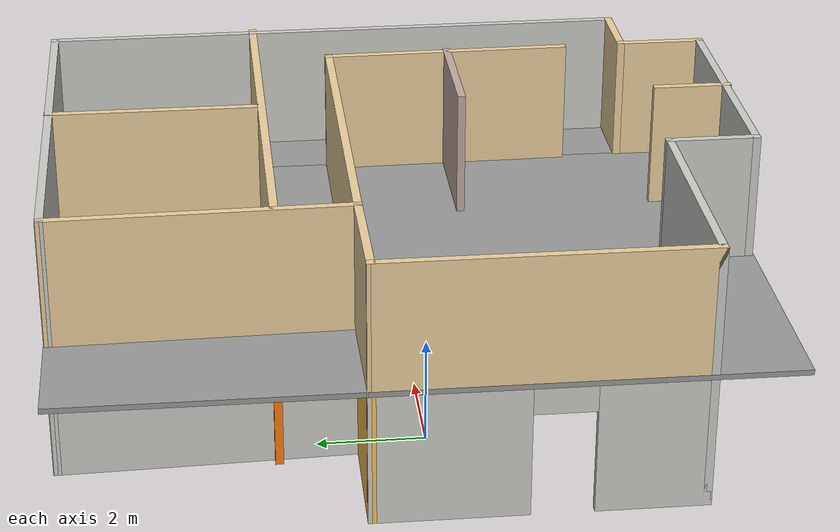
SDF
<?xml version='1.0'?>
<sdf version='1.6'>
  <model name='JdBuilding'>
    <pose frame=''>2.645 0.2 0 0 -0 0</pose>
    <link name='Floor_0'>
      <pose frame=''>0.019657 0 2.5 0 -0 0</pose>
      <visual name='Floor_0_Visual_0'>
        <pose frame=''>-0.747413 0 0.05 0 -0 0</pose>
        <geometry>
          <box>
            <size>9.2455 13.07 0.1</size>
          </box>
        </geometry>
        <material>
          <script>
            <uri>file://media/materials/scripts/gazebo.material</uri>
            <name>Gazebo/Grey</name>
          </script>
          <ambient>1 1 1 1</ambient>
        </material>
        <meta>
          <layer>1</layer>
        </meta>
      </visual>
      <collision name='Floor_0_Collision_0'>
        <geometry>
          <box>
            <size>9.2455 13.07 0.1</size>
          </box>
        </geometry>
        <pose frame=''>-0.747413 0 0.05 0 -0 0</pose>
      </collision>
      <visual name='Floor_0_Visual_1'>
        <pose frame=''>4.62275 -4.9075 0.05 0 -0 0</pose>
        <geometry>
          <box>
            <size>1.49483 3.255 0.1</size>
          </box>
        </geometry>
        <material>
          <script>
            <uri>file://media/materials/scripts/gazebo.material</uri>
            <name>Gazebo/Grey</name>
          </script>
          <ambient>1 1 1 1</ambient>
        </material>
        <meta>
          <layer>1</layer>
        </meta>
      </visual>
      <collision name='Floor_0_Collision_1'>
        <geometry>
          <box>
            <size>1.49483 3.255 0.1</size>
          </box>
        </geometry>
        <pose frame=''>4.62275 -4.9075 0.05 0 -0 0</pose>
      </collision>
      <visual name='Floor_0_Visual_2'>
        <pose frame=''>5.29775 1.6275 0.05 0 -0 0</pose>
        <geometry>
          <box>
            <size>0.144827 9.815 0.1</size>
          </box>
        </geometry>
        <material>
          <script>
            <uri>file://media/materials/scripts/gazebo.material</uri>
            <name>Gazebo/Grey</name>
          </script>
          <ambient>1 1 1 1</ambient>
        </material>
        <meta>
          <layer>1</layer>
        </meta>
      </visual>
      <collision name='Floor_0_Collision_2'>
        <geometry>
          <box>
            <size>0.144827 9.815 0.1</size>
          </box>
        </geometry>
        <pose frame=''>5.29775 1.6275 0.05 0 -0 0</pose>
      </collision>
      <visual name='Floor_0_Visual_3'>
        <pose frame=''>4.55034 3.7625 0.05 0 -0 0</pose>
        <geometry>
          <box>
            <size>1.35 5.545 0.1</size>
          </box>
        </geometry>
        <material>
          <script>
            <uri>file://media/materials/scripts/gazebo.material</uri>
            <name>Gazebo/Grey</name>
          </script>
          <ambient>1 1 1 1</ambient>
        </material>
        <meta>
          <layer>1</layer>
        </meta>
      </visual>
      <collision name='Floor_0_Collision_3'>
        <geometry>
          <box>
            <size>1.35 5.545 0.1</size>
          </box>
        </geometry>
        <pose frame=''>4.55034 3.7625 0.05 0 -0 0</pose>
      </collision>
    </link>
    <link name='Stairs_0'>
      <visual name='Stairs_0_Visual_0'>
        <pose frame=''>4.56999 0.847667 0.083333 0 -0 0</pose>
        <geometry>
          <box>
            <size>1.35 0.284667 0.166667</size>
          </box>
        </geometry>
        <material>
          <script>
            <uri>file://media/materials/scripts/gazebo.material</uri>
            <name>Gazebo/Wood</name>
          </script>
          <ambient>1 1 1 1</ambient>
        </material>
        <meta>
          <layer>0</layer>
        </meta>
      </visual>
      <collision name='Stairs_0_Collision_0'>
        <geometry>
          <box>
            <size>1.35 0.284667 0.166667</size>
          </box>
        </geometry>
        <pose frame=''>4.56999 0.847667 0.083333 0 -0 0</pose>
      </collision>
      <visual name='Stairs_0_Visual_1'>
        <pose frame=''>4.56999 0.563 0.25 0 -0 0</pose>
        <geometry>
          <box>
            <size>1.35 0.284667 0.166667</size>
          </box>
        </geometry>
        <material>
          <script>
            <uri>file://media/materials/scripts/gazebo.material</uri>
            <name>Gazebo/Wood</name>
          </script>
          <ambient>1 1 1 1</ambient>
        </material>
        <meta>
          <layer>0</layer>
        </meta>
      </visual>
      <collision name='Stairs_0_Collision_1'>
        <geometry>
          <box>
            <size>1.35 0.284667 0.166667</size>
          </box>
        </geometry>
        <pose frame=''>4.56999 0.563 0.25 0 -0 0</pose>
      </collision>
      <visual name='Stairs_0_Visual_2'>
        <pose frame=''>4.56999 0.278333 0.416667 0 -0 0</pose>
        <geometry>
          <box>
            <size>1.35 0.284667 0.166667</size>
          </box>
        </geometry>
        <material>
          <script>
            <uri>file://media/materials/scripts/gazebo.material</uri>
            <name>Gazebo/Wood</name>
          </script>
          <ambient>1 1 1 1</ambient>
        </material>
        <meta>
          <layer>0</layer>
        </meta>
      </visual>
      <collision name='Stairs_0_Collision_2'>
        <geometry>
          <box>
            <size>1.35 0.284667 0.166667</size>
          </box>
        </geometry>
        <pose frame=''>4.56999 0.278333 0.416667 0 -0 0</pose>
      </collision>
      <visual name='Stairs_0_Visual_3'>
        <pose frame=''>4.56999 -0.006334 0.583333 0 -0 0</pose>
        <geometry>
          <box>
            <size>1.35 0.284667 0.166667</size>
          </box>
        </geometry>
        <material>
          <script>
            <uri>file://media/materials/scripts/gazebo.material</uri>
            <name>Gazebo/Wood</name>
          </script>
          <ambient>1 1 1 1</ambient>
        </material>
        <meta>
          <layer>0</layer>
        </meta>
      </visual>
      <collision name='Stairs_0_Collision_3'>
        <geometry>
          <box>
            <size>1.35 0.284667 0.166667</size>
          </box>
        </geometry>
        <pose frame=''>4.56999 -0.006334 0.583333 0 -0 0</pose>
      </collision>
      <visual name='Stairs_0_Visual_4'>
        <pose frame=''>4.56999 -0.291 0.75 0 -0 0</pose>
        <geometry>
          <box>
            <size>1.35 0.284667 0.166667</size>
          </box>
        </geometry>
        <material>
          <script>
            <uri>file://media/materials/scripts/gazebo.material</uri>
            <name>Gazebo/Wood</name>
          </script>
          <ambient>1 1 1 1</ambient>
        </material>
        <meta>
          <layer>0</layer>
        </meta>
      </visual>
      <collision name='Stairs_0_Collision_4'>
        <geometry>
          <box>
            <size>1.35 0.284667 0.166667</size>
          </box>
        </geometry>
        <pose frame=''>4.56999 -0.291 0.75 0 -0 0</pose>
      </collision>
      <visual name='Stairs_0_Visual_5'>
        <pose frame=''>4.56999 -0.575667 0.916667 0 -0 0</pose>
        <geometry>
          <box>
            <size>1.35 0.284667 0.166667</size>
          </box>
        </geometry>
        <material>
          <script>
            <uri>file://media/materials/scripts/gazebo.material</uri>
            <name>Gazebo/Wood</name>
          </script>
          <ambient>1 1 1 1</ambient>
        </material>
        <meta>
          <layer>0</layer>
        </meta>
      </visual>
      <collision name='Stairs_0_Collision_5'>
        <geometry>
          <box>
            <size>1.35 0.284667 0.166667</size>
          </box>
        </geometry>
        <pose frame=''>4.56999 -0.575667 0.916667 0 -0 0</pose>
      </collision>
      <visual name='Stairs_0_Visual_6'>
        <pose frame=''>4.56999 -0.860334 1.08333 0 -0 0</pose>
        <geometry>
          <box>
            <size>1.35 0.284667 0.166667</size>
          </box>
        </geometry>
        <material>
          <script>
            <uri>file://media/materials/scripts/gazebo.material</uri>
            <name>Gazebo/Wood</name>
          </script>
          <ambient>1 1 1 1</ambient>
        </material>
        <meta>
          <layer>0</layer>
        </meta>
      </visual>
      <collision name='Stairs_0_Collision_6'>
        <geometry>
          <box>
            <size>1.35 0.284667 0.166667</size>
          </box>
        </geometry>
        <pose frame=''>4.56999 -0.860334 1.08333 0 -0 0</pose>
      </collision>
      <visual name='Stairs_0_Visual_7'>
        <pose frame=''>4.56999 -1.145 1.25 0 -0 0</pose>
        <geometry>
          <box>
            <size>1.35 0.284667 0.166667</size>
          </box>
        </geometry>
        <material>
          <script>
            <uri>file://media/materials/scripts/gazebo.material</uri>
            <name>Gazebo/Wood</name>
          </script>
          <ambient>1 1 1 1</ambient>
        </material>
        <meta>
          <layer>0</layer>
        </meta>
      </visual>
      <collision name='Stairs_0_Collision_7'>
        <geometry>
          <box>
            <size>1.35 0.284667 0.166667</size>
          </box>
        </geometry>
        <pose frame=''>4.56999 -1.145 1.25 0 -0 0</pose>
      </collision>
      <visual name='Stairs_0_Visual_8'>
        <pose frame=''>4.56999 -1.42967 1.41667 0 -0 0</pose>
        <geometry>
          <box>
            <size>1.35 0.284667 0.166667</size>
          </box>
        </geometry>
        <material>
          <script>
            <uri>file://media/materials/scripts/gazebo.material</uri>
            <name>Gazebo/Wood</name>
          </script>
          <ambient>1 1 1 1</ambient>
        </material>
        <meta>
          <layer>0</layer>
        </meta>
      </visual>
      <collision name='Stairs_0_Collision_8'>
        <geometry>
          <box>
            <size>1.35 0.284667 0.166667</size>
          </box>
        </geometry>
        <pose frame=''>4.56999 -1.42967 1.41667 0 -0 0</pose>
      </collision>
      <visual name='Stairs_0_Visual_9'>
        <pose frame=''>4.56999 -1.71433 1.58333 0 -0 0</pose>
        <geometry>
          <box>
            <size>1.35 0.284667 0.166667</size>
          </box>
        </geometry>
        <material>
          <script>
            <uri>file://media/materials/scripts/gazebo.material</uri>
            <name>Gazebo/Wood</name>
          </script>
          <ambient>1 1 1 1</ambient>
        </material>
        <meta>
          <layer>0</layer>
        </meta>
      </visual>
      <collision name='Stairs_0_Collision_9'>
        <geometry>
          <box>
            <size>1.35 0.284667 0.166667</size>
          </box>
        </geometry>
        <pose frame=''>4.56999 -1.71433 1.58333 0 -0 0</pose>
      </collision>
      <visual name='Stairs_0_Visual_10'>
        <pose frame=''>4.56999 -1.999 1.75 0 -0 0</pose>
        <geometry>
          <box>
            <size>1.35 0.284667 0.166667</size>
          </box>
        </geometry>
        <material>
          <script>
            <uri>file://media/materials/scripts/gazebo.material</uri>
            <name>Gazebo/Wood</name>
          </script>
          <ambient>1 1 1 1</ambient>
        </material>
        <meta>
          <layer>0</layer>
        </meta>
      </visual>
      <collision name='Stairs_0_Collision_10'>
        <geometry>
          <box>
            <size>1.35 0.284667 0.166667</size>
          </box>
        </geometry>
        <pose frame=''>4.56999 -1.999 1.75 0 -0 0</pose>
      </collision>
      <visual name='Stairs_0_Visual_11'>
        <pose frame=''>4.56999 -2.28367 1.91667 0 -0 0</pose>
        <geometry>
          <box>
            <size>1.35 0.284667 0.166667</size>
          </box>
        </geometry>
        <material>
          <script>
            <uri>file://media/materials/scripts/gazebo.material</uri>
            <name>Gazebo/Wood</name>
          </script>
          <ambient>1 1 1 1</ambient>
        </material>
        <meta>
          <layer>0</layer>
        </meta>
      </visual>
      <collision name='Stairs_0_Collision_11'>
        <geometry>
          <box>
            <size>1.35 0.284667 0.166667</size>
          </box>
        </geometry>
        <pose frame=''>4.56999 -2.28367 1.91667 0 -0 0</pose>
      </collision>
      <visual name='Stairs_0_Visual_12'>
        <pose frame=''>4.56999 -2.56833 2.08333 0 -0 0</pose>
        <geometry>
          <box>
            <size>1.35 0.284667 0.166667</size>
          </box>
        </geometry>
        <material>
          <script>
            <uri>file://media/materials/scripts/gazebo.material</uri>
            <name>Gazebo/Wood</name>
          </script>
          <ambient>1 1 1 1</ambient>
        </material>
        <meta>
          <layer>0</layer>
        </meta>
      </visual>
      <collision name='Stairs_0_Collision_12'>
        <geometry>
          <box>
            <size>1.35 0.284667 0.166667</size>
          </box>
        </geometry>
        <pose frame=''>4.56999 -2.56833 2.08333 0 -0 0</pose>
      </collision>
      <visual name='Stairs_0_Visual_13'>
        <pose frame=''>4.56999 -2.853 2.25 0 -0 0</pose>
        <geometry>
          <box>
            <size>1.35 0.284667 0.166667</size>
          </box>
        </geometry>
        <material>
          <script>
            <uri>file://media/materials/scripts/gazebo.material</uri>
            <name>Gazebo/Wood</name>
          </script>
          <ambient>1 1 1 1</ambient>
        </material>
        <meta>
          <layer>0</layer>
        </meta>
      </visual>
      <collision name='Stairs_0_Collision_13'>
        <geometry>
          <box>
            <size>1.35 0.284667 0.166667</size>
          </box>
        </geometry>
        <pose frame=''>4.56999 -2.853 2.25 0 -0 0</pose>
      </collision>
      <visual name='Stairs_0_Visual_14'>
        <pose frame=''>4.56999 -3.13767 2.41667 0 -0 0</pose>
        <geometry>
          <box>
            <size>1.35 0.284667 0.166667</size>
          </box>
        </geometry>
        <material>
          <script>
            <uri>file://media/materials/scripts/gazebo.material</uri>
            <name>Gazebo/Wood</name>
          </script>
          <ambient>1 1 1 1</ambient>
        </material>
        <meta>
          <layer>0</layer>
        </meta>
      </visual>
      <collision name='Stairs_0_Collision_14'>
        <geometry>
          <box>
            <size>1.35 0.284667 0.166667</size>
          </box>
        </geometry>
        <pose frame=''>4.56999 -3.13767 2.41667 0 -0 0</pose>
      </collision>
    </link>
    <link name='Wall_0'>
      <collision name='Wall_0_Collision'>
        <geometry>
          <box>
            <size>11.4304 0.15 2.5</size>
          </box>
        </geometry>
        <pose frame=''>0 0 1.25 0 -0 0</pose>
      </collision>
      <visual name='Wall_0_Visual'>
        <pose frame=''>0 0 1.25 0 -0 0</pose>
        <geometry>
          <box>
            <size>11.4304 0.15 2.5</size>
          </box>
        </geometry>
        <material>
          <script>
            <uri>file://media/materials/scripts/gazebo.material</uri>
            <name>Gazebo/CeilingTiled</name>
          </script>
          <ambient>1 0.764706 0.305882 1</ambient>
        </material>
        <meta>
          <layer>0</layer>
        </meta>
      </visual>
      <pose frame=''>5.22499 0.81 0 0 0 -1.56193</pose>
    </link>
    <link name='Wall_1'>
      <collision name='Wall_1_Collision'>
        <geometry>
          <box>
            <size>1.5 0.15 2.5</size>
          </box>
        </geometry>
        <pose frame=''>0 0 1.25 0 -0 0</pose>
      </collision>
      <visual name='Wall_1_Visual'>
        <pose frame=''>0 0 1.25 0 -0 0</pose>
        <geometry>
          <box>
            <size>1.5 0.15 2.5</size>
          </box>
        </geometry>
        <material>
          <script>
            <uri>file://media/materials/scripts/gazebo.material</uri>
            <name>Gazebo/Grey</name>
          </script>
          <ambient>1 0.764706 0.305882 1</ambient>
        </material>
        <meta>
          <layer>0</layer>
        </meta>
      </visual>
      <pose frame=''>4.59999 -4.83 0 0 -0 3.14159</pose>
    </link>
    <link name='Wall_13'>
      <pose frame=''>0.979995 2.5 0 0 -0 0</pose>
      <visual name='Wall_13_Visual_0'>
        <pose frame=''>-3.8075 0 1.25 0 -0 0</pose>
        <geometry>
          <box>
            <size>0.885 0.15 2.5</size>
          </box>
        </geometry>
        <material>
          <script>
            <uri>file://media/materials/scripts/gazebo.material</uri>
            <name>Gazebo/Grey</name>
          </script>
          <ambient>0.996078 0.47451 0.0196078 1</ambient>
        </material>
        <meta>
          <layer>0</layer>
        </meta>
      </visual>
      <collision name='Wall_13_Collision_0'>
        <geometry>
          <box>
            <size>0.885 0.15 2.5</size>
          </box>
        </geometry>
        <pose frame=''>-3.8075 0 1.25 0 -0 0</pose>
      </collision>
      <visual name='Wall_13_Visual_1'>
        <pose frame=''>0.8925 0 1.25 0 -0 0</pose>
        <geometry>
          <box>
            <size>6.715 0.15 2.5</size>
          </box>
        </geometry>
        <material>
          <script>
            <uri>file://media/materials/scripts/gazebo.material</uri>
            <name>Gazebo/Grey</name>
          </script>
          <ambient>0.996078 0.47451 0.0196078 1</ambient>
        </material>
        <meta>
          <layer>0</layer>
        </meta>
      </visual>
      <collision name='Wall_13_Collision_1'>
        <geometry>
          <box>
            <size>6.715 0.15 2.5</size>
          </box>
        </geometry>
        <pose frame=''>0.8925 0 1.25 0 -0 0</pose>
      </collision>
      <visual name='Wall_13_Visual_2'>
        <pose frame=''>-2.915 0 2.25 0 -0 0</pose>
        <geometry>
          <box>
            <size>0.9 0.15 0.5</size>
          </box>
        </geometry>
        <material>
          <script>
            <uri>file://media/materials/scripts/gazebo.material</uri>
            <name>Gazebo/Grey</name>
          </script>
          <ambient>0.996078 0.47451 0.0196078 1</ambient>
        </material>
        <meta>
          <layer>0</layer>
        </meta>
      </visual>
      <collision name='Wall_13_Collision_2'>
        <geometry>
          <box>
            <size>0.9 0.15 0.5</size>
          </box>
        </geometry>
        <pose frame=''>-2.915 0 2.25 0 -0 0</pose>
      </collision>
    </link>
    <link name='Wall_15'>
      <collision name='Wall_15_Collision'>
        <geometry>
          <box>
            <size>4 0.15 2.5</size>
          </box>
        </geometry>
        <pose frame=''>0 0 1.25 0 -0 0</pose>
      </collision>
      <visual name='Wall_15_Visual'>
        <pose frame=''>0 0 1.25 0 -0 0</pose>
        <geometry>
          <box>
            <size>4 0.15 2.5</size>
          </box>
        </geometry>
        <material>
          <script>
            <uri>file://media/materials/scripts/gazebo.material</uri>
            <name>Gazebo/Grey</name>
          </script>
          <ambient>0.996078 0.47451 0.0196078 1</ambient>
        </material>
        <meta>
          <layer>0</layer>
        </meta>
      </visual>
      <pose frame=''>1.40499 4.535 0 0 0 -1.5708</pose>
    </link>
    <link name='Wall_17'>
      <collision name='Wall_17_Collision'>
        <geometry>
          <box>
            <size>1.5 0.15 2.5</size>
          </box>
        </geometry>
        <pose frame=''>0 0 1.25 0 -0 0</pose>
      </collision>
      <visual name='Wall_17_Visual'>
        <pose frame=''>0 0 1.25 0 -0 0</pose>
        <geometry>
          <box>
            <size>1.5 0.15 2.5</size>
          </box>
        </geometry>
        <material>
          <script>
            <uri>file://media/materials/scripts/gazebo.material</uri>
            <name>Gazebo/CeilingTiled</name>
          </script>
          <ambient>0.996078 0.47451 0.0196078 1</ambient>
        </material>
        <meta>
          <layer>0</layer>
        </meta>
      </visual>
      <pose frame=''>1.58499 -5.785 0 0 -0 1.5708</pose>
    </link>
    <link name='Wall_19'>
      <collision name='Wall_19_Collision'>
        <geometry>
          <box>
            <size>4.79 0.15 2.5</size>
          </box>
        </geometry>
        <pose frame=''>0 0 1.25 0 -0 0</pose>
      </collision>
      <visual name='Wall_19_Visual'>
        <pose frame=''>0 0 1.25 0 -0 0</pose>
        <geometry>
          <box>
            <size>4.79 0.15 2.5</size>
          </box>
        </geometry>
        <material>
          <script>
            <uri>file://media/materials/scripts/gazebo.material</uri>
            <name>Gazebo/Grey</name>
          </script>
          <ambient>0.996078 0.47451 0.0196078 1</ambient>
        </material>
        <meta>
          <layer>0</layer>
        </meta>
      </visual>
      <pose frame=''>3.86499 -1.31 0 0 -0 1.5708</pose>
    </link>
    <link name='Wall_2'>
      <collision name='Wall_2_Collision'>
        <geometry>
          <box>
            <size>1.75 0.15 2.5</size>
          </box>
        </geometry>
        <pose frame=''>0 0 1.25 0 -0 0</pose>
      </collision>
      <visual name='Wall_2_Visual'>
        <pose frame=''>0 0 1.25 0 -0 0</pose>
        <geometry>
          <box>
            <size>1.75 0.15 2.5</size>
          </box>
        </geometry>
        <material>
          <script>
            <uri>file://media/materials/scripts/gazebo.material</uri>
            <name>Gazebo/Grey</name>
          </script>
          <ambient>1 0.764706 0.305882 1</ambient>
        </material>
        <meta>
          <layer>0</layer>
        </meta>
      </visual>
      <pose frame=''>3.925 -5.63 0 0 0 -1.5708</pose>
    </link>
    <link name='Wall_20'>
      <pose frame=''>0.439995 1 0 0 -0 3.14159</pose>
      <visual name='Wall_20_Visual_0'>
        <pose frame=''>-2.165 0 1.25 0 -0 0</pose>
        <geometry>
          <box>
            <size>2.67 0.15 2.5</size>
          </box>
        </geometry>
        <material>
          <script>
            <uri>file://media/materials/scripts/gazebo.material</uri>
            <name>Gazebo/Grey</name>
          </script>
          <ambient>0.996078 0.47451 0.0196078 1</ambient>
        </material>
        <meta>
          <layer>0</layer>
        </meta>
      </visual>
      <collision name='Wall_20_Collision_0'>
        <geometry>
          <box>
            <size>2.67 0.15 2.5</size>
          </box>
        </geometry>
        <pose frame=''>-2.165 0 1.25 0 -0 0</pose>
      </collision>
      <visual name='Wall_20_Visual_1'>
        <pose frame=''>1.83 0 1.25 0 -0 0</pose>
        <geometry>
          <box>
            <size>3.34 0.15 2.5</size>
          </box>
        </geometry>
        <material>
          <script>
            <uri>file://media/materials/scripts/gazebo.material</uri>
            <name>Gazebo/Grey</name>
          </script>
          <ambient>0.996078 0.47451 0.0196078 1</ambient>
        </material>
        <meta>
          <layer>0</layer>
        </meta>
      </visual>
      <collision name='Wall_20_Collision_1'>
        <geometry>
          <box>
            <size>3.34 0.15 2.5</size>
          </box>
        </geometry>
        <pose frame=''>1.83 0 1.25 0 -0 0</pose>
      </collision>
      <visual name='Wall_20_Visual_2'>
        <pose frame=''>-0.335 0 2.25 0 -0 0</pose>
        <geometry>
          <box>
            <size>0.99 0.15 0.5</size>
          </box>
        </geometry>
        <material>
          <script>
            <uri>file://media/materials/scripts/gazebo.material</uri>
            <name>Gazebo/Grey</name>
          </script>
          <ambient>0.996078 0.47451 0.0196078 1</ambient>
        </material>
        <meta>
          <layer>0</layer>
        </meta>
      </visual>
      <collision name='Wall_20_Collision_2'>
        <geometry>
          <box>
            <size>0.99 0.15 0.5</size>
          </box>
        </geometry>
        <pose frame=''>-0.335 0 2.25 0 -0 0</pose>
      </collision>
    </link>
    <link name='Wall_22'>
      <collision name='Wall_22_Collision'>
        <geometry>
          <box>
            <size>2.5 0.15 2.5</size>
          </box>
        </geometry>
        <pose frame=''>0 0 1.25 0 -0 0</pose>
      </collision>
      <visual name='Wall_22_Visual'>
        <pose frame=''>0 0 1.25 0 -0 0</pose>
        <geometry>
          <box>
            <size>2.5 0.15 2.5</size>
          </box>
        </geometry>
        <material>
          <script>
            <uri>file://media/materials/scripts/gazebo.material</uri>
            <name>Gazebo/Grey</name>
          </script>
          <ambient>0.996078 0.47451 0.0196078 1</ambient>
        </material>
        <meta>
          <layer>0</layer>
        </meta>
      </visual>
      <pose frame=''>2.71 -1.32 0 0 -0 3.14159</pose>
    </link>
    <link name='Wall_24'>
      <collision name='Wall_24_Collision'>
        <geometry>
          <box>
            <size>11.4304 0.15 2.5</size>
          </box>
        </geometry>
        <pose frame=''>0 0 1.25 0 -0 0</pose>
      </collision>
      <visual name='Wall_24_Visual'>
        <pose frame=''>0 0 1.25 0 -0 0</pose>
        <geometry>
          <box>
            <size>11.4304 0.15 2.5</size>
          </box>
        </geometry>
        <material>
          <script>
            <uri>file://media/materials/scripts/gazebo.material</uri>
            <name>Gazebo/CeilingTiled</name>
          </script>
          <ambient>0.921569 0.807843 0.615686 1</ambient>
        </material>
        <meta>
          <layer>1</layer>
        </meta>
      </visual>
      <pose frame=''>5.22499 0.81 2.5 0 0 -1.56193</pose>
    </link>
    <link name='Wall_25'>
      <collision name='Wall_25_Collision'>
        <geometry>
          <box>
            <size>1.5 0.15 2.5</size>
          </box>
        </geometry>
        <pose frame=''>0 0 1.25 0 -0 0</pose>
      </collision>
      <visual name='Wall_25_Visual'>
        <pose frame=''>0 0 1.25 0 -0 0</pose>
        <geometry>
          <box>
            <size>1.5 0.15 2.5</size>
          </box>
        </geometry>
        <material>
          <script>
            <uri>file://media/materials/scripts/gazebo.material</uri>
            <name>Gazebo/Grey</name>
          </script>
          <ambient>0.921569 0.807843 0.615686 1</ambient>
        </material>
        <meta>
          <layer>1</layer>
        </meta>
      </visual>
      <pose frame=''>4.59999 -4.83 2.5 0 -0 3.14159</pose>
    </link>
    <link name='Wall_26'>
      <collision name='Wall_26_Collision'>
        <geometry>
          <box>
            <size>1.75 0.15 2.5</size>
          </box>
        </geometry>
        <pose frame=''>0 0 1.25 0 -0 0</pose>
      </collision>
      <visual name='Wall_26_Visual'>
        <pose frame=''>0 0 1.25 0 -0 0</pose>
        <geometry>
          <box>
            <size>1.75 0.15 2.5</size>
          </box>
        </geometry>
        <material>
          <script>
            <uri>file://media/materials/scripts/gazebo.material</uri>
            <name>Gazebo/Grey</name>
          </script>
          <ambient>0.921569 0.807843 0.615686 1</ambient>
        </material>
        <meta>
          <layer>1</layer>
        </meta>
      </visual>
      <pose frame=''>3.925 -5.63 2.5 0 0 -1.5708</pose>
    </link>
    <link name='Wall_27'>
      <collision name='Wall_27_Collision'>
        <geometry>
          <box>
            <size>5 0.15 2.5</size>
          </box>
        </geometry>
        <pose frame=''>0 0 1.25 0 -0 0</pose>
      </collision>
      <visual name='Wall_27_Visual'>
        <pose frame=''>0 0 1.25 0 -0 0</pose>
        <geometry>
          <box>
            <size>5 0.15 2.5</size>
          </box>
        </geometry>
        <material>
          <script>
            <uri>file://media/materials/scripts/gazebo.material</uri>
            <name>Gazebo/CeilingTiled</name>
          </script>
          <ambient>0.921569 0.807843 0.615686 1</ambient>
        </material>
        <meta>
          <layer>1</layer>
        </meta>
      </visual>
      <pose frame=''>1.49999 -6.43 2.5 0 -0 3.14159</pose>
    </link>
    <link name='Wall_28'>
      <collision name='Wall_28_Collision'>
        <geometry>
          <box>
            <size>1.75 0.15 2.5</size>
          </box>
        </geometry>
        <pose frame=''>0 0 1.25 0 -0 0</pose>
      </collision>
      <visual name='Wall_28_Visual'>
        <pose frame=''>0 0 1.25 0 -0 0</pose>
        <geometry>
          <box>
            <size>1.75 0.15 2.5</size>
          </box>
        </geometry>
        <material>
          <script>
            <uri>file://media/materials/scripts/gazebo.material</uri>
            <name>Gazebo/CeilingTiled</name>
          </script>
          <ambient>0.921569 0.807843 0.615686 1</ambient>
        </material>
        <meta>
          <layer>1</layer>
        </meta>
      </visual>
      <pose frame=''>-0.925005 -5.63 2.5 0 -0 1.5708</pose>
    </link>
    <link name='Wall_29'>
      <collision name='Wall_29_Collision'>
        <geometry>
          <box>
            <size>4.5 0.15 2.5</size>
          </box>
        </geometry>
        <pose frame=''>0 0 1.25 0 -0 0</pose>
      </collision>
      <visual name='Wall_29_Visual'>
        <pose frame=''>0 0 1.25 0 -0 0</pose>
        <geometry>
          <box>
            <size>4.5 0.15 2.5</size>
          </box>
        </geometry>
        <material>
          <script>
            <uri>file://media/materials/scripts/gazebo.material</uri>
            <name>Gazebo/CeilingTiled</name>
          </script>
          <ambient>0.921569 0.807843 0.615686 1</ambient>
        </material>
        <meta>
          <layer>1</layer>
        </meta>
      </visual>
      <pose frame=''>-3.1 -4.83 2.5 0 -0 3.14159</pose>
    </link>
    <link name='Wall_3'>
      <collision name='Wall_3_Collision'>
        <geometry>
          <box>
            <size>5 0.15 2.5</size>
          </box>
        </geometry>
        <pose frame=''>0 0 1.25 0 -0 0</pose>
      </collision>
      <visual name='Wall_3_Visual'>
        <pose frame=''>0 0 1.25 0 -0 0</pose>
        <geometry>
          <box>
            <size>5 0.15 2.5</size>
          </box>
        </geometry>
        <material>
          <script>
            <uri>file://media/materials/scripts/gazebo.material</uri>
            <name>Gazebo/CeilingTiled</name>
          </script>
          <ambient>1 0.764706 0.305882 1</ambient>
        </material>
        <meta>
          <layer>0</layer>
        </meta>
      </visual>
      <pose frame=''>1.49999 -6.43 0 0 -0 3.14159</pose>
    </link>
    <link name='Wall_30'>
      <collision name='Wall_30_Collision'>
        <geometry>
          <box>
            <size>6 0.15 2.5</size>
          </box>
        </geometry>
        <pose frame=''>0 0 1.25 0 -0 0</pose>
      </collision>
      <visual name='Wall_30_Visual'>
        <pose frame=''>0 0 1.25 0 -0 0</pose>
        <geometry>
          <box>
            <size>6 0.15 2.5</size>
          </box>
        </geometry>
        <material>
          <script>
            <uri>file://media/materials/scripts/gazebo.material</uri>
            <name>Gazebo/Grey</name>
          </script>
          <ambient>0.921569 0.807843 0.615686 1</ambient>
        </material>
        <meta>
          <layer>1</layer>
        </meta>
      </visual>
      <pose frame=''>-5.27501 -1.905 2.5 0 -0 1.5708</pose>
    </link>
    <link name='Wall_31'>
      <collision name='Wall_31_Collision'>
        <geometry>
          <box>
            <size>2.36009 0.15 2.5</size>
          </box>
        </geometry>
        <pose frame=''>0 0 1.25 0 -0 0</pose>
      </collision>
      <visual name='Wall_31_Visual'>
        <pose frame=''>0 0 1.25 0 -0 0</pose>
        <geometry>
          <box>
            <size>2.36009 0.15 2.5</size>
          </box>
        </geometry>
        <material>
          <script>
            <uri>file://media/materials/scripts/gazebo.material</uri>
            <name>Gazebo/Grey</name>
          </script>
          <ambient>0.921569 0.807843 0.615686 1</ambient>
        </material>
        <meta>
          <layer>1</layer>
        </meta>
      </visual>
      <pose frame=''>-4.17 1.03 2.5 0 -0 0.00905</pose>
    </link>
    <link name='Wall_32'>
      <collision name='Wall_32_Collision'>
        <geometry>
          <box>
            <size>5.55133 0.15 2.5</size>
          </box>
        </geometry>
        <pose frame=''>0 0 1.25 0 -0 0</pose>
      </collision>
      <visual name='Wall_32_Visual'>
        <pose frame=''>0 0 1.25 0 -0 0</pose>
        <geometry>
          <box>
            <size>5.55133 0.15 2.5</size>
          </box>
        </geometry>
        <material>
          <script>
            <uri>file://media/materials/scripts/gazebo.material</uri>
            <name>Gazebo/Grey</name>
          </script>
          <ambient>0.921569 0.807843 0.615686 1</ambient>
        </material>
        <meta>
          <layer>1</layer>
        </meta>
      </visual>
      <pose frame=''>-3.12 3.74 2.5 0 -0 1.59116</pose>
    </link>
    <link name='Wall_33'>
      <collision name='Wall_33_Collision'>
        <geometry>
          <box>
            <size>8.5 0.15 2.5</size>
          </box>
        </geometry>
        <pose frame=''>0 0 1.25 0 -0 0</pose>
      </collision>
      <visual name='Wall_33_Visual'>
        <pose frame=''>0 0 1.25 0 -0 0</pose>
        <geometry>
          <box>
            <size>8.5 0.15 2.5</size>
          </box>
        </geometry>
        <material>
          <script>
            <uri>file://media/materials/scripts/gazebo.material</uri>
            <name>Gazebo/CeilingTiled</name>
          </script>
          <ambient>0.921569 0.807843 0.615686 1</ambient>
        </material>
        <meta>
          <layer>1</layer>
        </meta>
      </visual>
      <pose frame=''>0.999995 6.45 2.5 0 -0 0</pose>
    </link>
    <link name='Wall_34'>
      <collision name='Wall_34_Collision'>
        <geometry>
          <box>
            <size>8.5 0.15 2.5</size>
          </box>
        </geometry>
        <pose frame=''>0 0 1.25 0 -0 0</pose>
      </collision>
      <visual name='Wall_34_Visual'>
        <pose frame=''>0 0 1.25 0 -0 0</pose>
        <geometry>
          <box>
            <size>8.5 0.15 2.5</size>
          </box>
        </geometry>
        <material>
          <script>
            <uri>file://media/materials/scripts/gazebo.material</uri>
            <name>Gazebo/Grey</name>
          </script>
          <ambient>0.921569 0.807843 0.615686 1</ambient>
        </material>
        <meta>
          <layer>1</layer>
        </meta>
      </visual>
      <pose frame=''>1.14 2.48 2.5 0 -0 0</pose>
    </link>
    <link name='Wall_35'>
      <collision name='Wall_35_Collision'>
        <geometry>
          <box>
            <size>4 0.15 2.5</size>
          </box>
        </geometry>
        <pose frame=''>0 0 1.25 0 -0 0</pose>
      </collision>
      <visual name='Wall_35_Visual'>
        <pose frame=''>0 0 1.25 0 -0 0</pose>
        <geometry>
          <box>
            <size>4 0.15 2.5</size>
          </box>
        </geometry>
        <material>
          <script>
            <uri>file://media/materials/scripts/gazebo.material</uri>
            <name>Gazebo/Grey</name>
          </script>
          <ambient>0.921569 0.807843 0.615686 1</ambient>
        </material>
        <meta>
          <layer>1</layer>
        </meta>
      </visual>
      <pose frame=''>1.40499 4.535 2.5 0 0 -1.5708</pose>
    </link>
    <link name='Wall_36'>
      <collision name='Wall_36_Collision'>
        <geometry>
          <box>
            <size>1.5 0.15 2.5</size>
          </box>
        </geometry>
        <pose frame=''>0 0 1.25 0 -0 0</pose>
      </collision>
      <visual name='Wall_36_Visual'>
        <pose frame=''>0 0 1.25 0 -0 0</pose>
        <geometry>
          <box>
            <size>1.5 0.15 2.5</size>
          </box>
        </geometry>
        <material>
          <script>
            <uri>file://media/materials/scripts/gazebo.material</uri>
            <name>Gazebo/Grey</name>
          </script>
          <ambient>0.921569 0.807843 0.615686 1</ambient>
        </material>
        <meta>
          <layer>1</layer>
        </meta>
      </visual>
      <pose frame=''>1.58499 -5.785 2.5 0 -0 1.5708</pose>
    </link>
    <link name='Wall_37'>
      <collision name='Wall_37_Collision'>
        <geometry>
          <box>
            <size>4.8201 0.15 2.5</size>
          </box>
        </geometry>
        <pose frame=''>0 0 1.25 0 -0 0</pose>
      </collision>
      <visual name='Wall_37_Visual'>
        <pose frame=''>0 0 1.25 0 -0 0</pose>
        <geometry>
          <box>
            <size>4.8201 0.15 2.5</size>
          </box>
        </geometry>
        <material>
          <script>
            <uri>file://media/materials/scripts/gazebo.material</uri>
            <name>Gazebo/Grey</name>
          </script>
          <ambient>0.921569 0.807843 0.615686 1</ambient>
        </material>
        <meta>
          <layer>1</layer>
        </meta>
      </visual>
      <pose frame=''>3.82499 -1.295 2.5 0 -0 1.58793</pose>
    </link>
    <link name='Wall_38'>
      <collision name='Wall_38_Collision'>
        <geometry>
          <box>
            <size>7 0.15 2.5</size>
          </box>
        </geometry>
        <pose frame=''>0 0 1.25 0 -0 0</pose>
      </collision>
      <visual name='Wall_38_Visual'>
        <pose frame=''>0 0 1.25 0 -0 0</pose>
        <geometry>
          <box>
            <size>7 0.15 2.5</size>
          </box>
        </geometry>
        <material>
          <script>
            <uri>file://media/materials/scripts/gazebo.material</uri>
            <name>Gazebo/Grey</name>
          </script>
          <ambient>0.921569 0.807843 0.615686 1</ambient>
        </material>
        <meta>
          <layer>1</layer>
        </meta>
      </visual>
      <pose frame=''>0.369995 1.04 2.5 0 -0 3.14159</pose>
    </link>
    <link name='Wall_39'>
      <collision name='Wall_39_Collision'>
        <geometry>
          <box>
            <size>2.5 0.15 2.5</size>
          </box>
        </geometry>
        <pose frame=''>0 0 1.25 0 -0 0</pose>
      </collision>
      <visual name='Wall_39_Visual'>
        <pose frame=''>0 0 1.25 0 -0 0</pose>
        <geometry>
          <box>
            <size>2.5 0.15 2.5</size>
          </box>
        </geometry>
        <material>
          <script>
            <uri>file://media/materials/scripts/gazebo.material</uri>
            <name>Gazebo/Grey</name>
          </script>
          <ambient>0.760784 0.662745 0.627451 1</ambient>
        </material>
        <meta>
          <layer>1</layer>
        </meta>
      </visual>
      <pose frame=''>2.71 -1.32 2.5 0 -0 3.14159</pose>
    </link>
    <link name='Wall_4'>
      <collision name='Wall_4_Collision'>
        <geometry>
          <box>
            <size>1.75 0.15 2.5</size>
          </box>
        </geometry>
        <pose frame=''>0 0 1.25 0 -0 0</pose>
      </collision>
      <visual name='Wall_4_Visual'>
        <pose frame=''>0 0 1.25 0 -0 0</pose>
        <geometry>
          <box>
            <size>1.75 0.15 2.5</size>
          </box>
        </geometry>
        <material>
          <script>
            <uri>file://media/materials/scripts/gazebo.material</uri>
            <name>Gazebo/CeilingTiled</name>
          </script>
          <ambient>1 0.764706 0.305882 1</ambient>
        </material>
        <meta>
          <layer>0</layer>
        </meta>
      </visual>
      <pose frame=''>-0.925005 -5.63 0 0 -0 1.5708</pose>
    </link>
    <link name='Wall_5'>
      <collision name='Wall_5_Collision'>
        <geometry>
          <box>
            <size>4.5 0.15 2.5</size>
          </box>
        </geometry>
        <pose frame=''>0 0 1.25 0 -0 0</pose>
      </collision>
      <visual name='Wall_5_Visual'>
        <pose frame=''>0 0 1.25 0 -0 0</pose>
        <geometry>
          <box>
            <size>4.5 0.15 2.5</size>
          </box>
        </geometry>
        <material>
          <script>
            <uri>file://media/materials/scripts/gazebo.material</uri>
            <name>Gazebo/CeilingTiled</name>
          </script>
          <ambient>1 0.764706 0.305882 1</ambient>
        </material>
        <meta>
          <layer>0</layer>
        </meta>
      </visual>
      <pose frame=''>-3.1 -4.83 0 0 -0 3.14159</pose>
    </link>
    <link name='Wall_6'>
      <pose frame=''>-5.27501 -1.905 0 0 -0 1.5708</pose>
      <visual name='Wall_6_Visual_0'>
        <pose frame=''>-1.97 0 1.25 0 -0 0</pose>
        <geometry>
          <box>
            <size>2.06 0.15 2.5</size>
          </box>
        </geometry>
        <material>
          <script>
            <uri>file://media/materials/scripts/gazebo.material</uri>
            <name>Gazebo/CeilingTiled</name>
          </script>
          <ambient>1 0.764706 0.305882 1</ambient>
        </material>
        <meta>
          <layer>0</layer>
        </meta>
      </visual>
      <collision name='Wall_6_Collision_0'>
        <geometry>
          <box>
            <size>2.06 0.15 2.5</size>
          </box>
        </geometry>
        <pose frame=''>-1.97 0 1.25 0 -0 0</pose>
      </collision>
      <visual name='Wall_6_Visual_1'>
        <pose frame=''>1.59 0 1.25 0 -0 0</pose>
        <geometry>
          <box>
            <size>2.82 0.15 2.5</size>
          </box>
        </geometry>
        <material>
          <script>
            <uri>file://media/materials/scripts/gazebo.material</uri>
            <name>Gazebo/CeilingTiled</name>
          </script>
          <ambient>1 0.764706 0.305882 1</ambient>
        </material>
        <meta>
          <layer>0</layer>
        </meta>
      </visual>
      <collision name='Wall_6_Collision_1'>
        <geometry>
          <box>
            <size>2.82 0.15 2.5</size>
          </box>
        </geometry>
        <pose frame=''>1.59 0 1.25 0 -0 0</pose>
      </collision>
      <visual name='Wall_6_Visual_2'>
        <pose frame=''>-0.38 0 2.25 0 -0 0</pose>
        <geometry>
          <box>
            <size>1.12 0.15 0.5</size>
          </box>
        </geometry>
        <material>
          <script>
            <uri>file://media/materials/scripts/gazebo.material</uri>
            <name>Gazebo/CeilingTiled</name>
          </script>
          <ambient>1 0.764706 0.305882 1</ambient>
        </material>
        <meta>
          <layer>0</layer>
        </meta>
      </visual>
      <collision name='Wall_6_Collision_2'>
        <geometry>
          <box>
            <size>1.12 0.15 0.5</size>
          </box>
        </geometry>
        <pose frame=''>-0.38 0 2.25 0 -0 0</pose>
      </collision>
    </link>
    <link name='Wall_7'>
      <collision name='Wall_7_Collision'>
        <geometry>
          <box>
            <size>2.44009 0.15 2.5</size>
          </box>
        </geometry>
        <pose frame=''>0 0 1.25 0 -0 0</pose>
      </collision>
      <visual name='Wall_7_Visual'>
        <pose frame=''>0 0 1.25 0 -0 0</pose>
        <geometry>
          <box>
            <size>2.44009 0.15 2.5</size>
          </box>
        </geometry>
        <material>
          <script>
            <uri>file://media/materials/scripts/gazebo.material</uri>
            <name>Gazebo/Grey</name>
          </script>
          <ambient>1 0.764706 0.305882 1</ambient>
        </material>
        <meta>
          <layer>0</layer>
        </meta>
      </visual>
      <pose frame=''>-4.13 1.01 0 0 0 -0.008733</pose>
    </link>
    <link name='Wall_8'>
      <collision name='Wall_8_Collision'>
        <geometry>
          <box>
            <size>5.59332 0.15 2.5</size>
          </box>
        </geometry>
        <pose frame=''>0 0 1.25 0 -0 0</pose>
      </collision>
      <visual name='Wall_8_Visual'>
        <pose frame=''>0 0 1.25 0 -0 0</pose>
        <geometry>
          <box>
            <size>5.59332 0.15 2.5</size>
          </box>
        </geometry>
        <material>
          <script>
            <uri>file://media/materials/scripts/gazebo.material</uri>
            <name>Gazebo/CeilingTiled</name>
          </script>
          <ambient>1 0.764706 0.305882 1</ambient>
        </material>
        <meta>
          <layer>0</layer>
        </meta>
      </visual>
      <pose frame=''>-3.08 3.72 0 0 -0 1.60571</pose>
    </link>
    <link name='Wall_9'>
      <collision name='Wall_9_Collision'>
        <geometry>
          <box>
            <size>8.5 0.15 2.5</size>
          </box>
        </geometry>
        <pose frame=''>0 0 1.25 0 -0 0</pose>
      </collision>
      <visual name='Wall_9_Visual'>
        <pose frame=''>0 0 1.25 0 -0 0</pose>
        <geometry>
          <box>
            <size>8.5 0.15 2.5</size>
          </box>
        </geometry>
        <material>
          <script>
            <uri>file://media/materials/scripts/gazebo.material</uri>
            <name>Gazebo/CeilingTiled</name>
          </script>
          <ambient>1 0.764706 0.305882 1</ambient>
        </material>
        <meta>
          <layer>0</layer>
        </meta>
      </visual>
      <pose frame=''>0.999995 6.45 0 0 -0 0</pose>
    </link>
    <static>1</static>
  </model>
</sdf>
